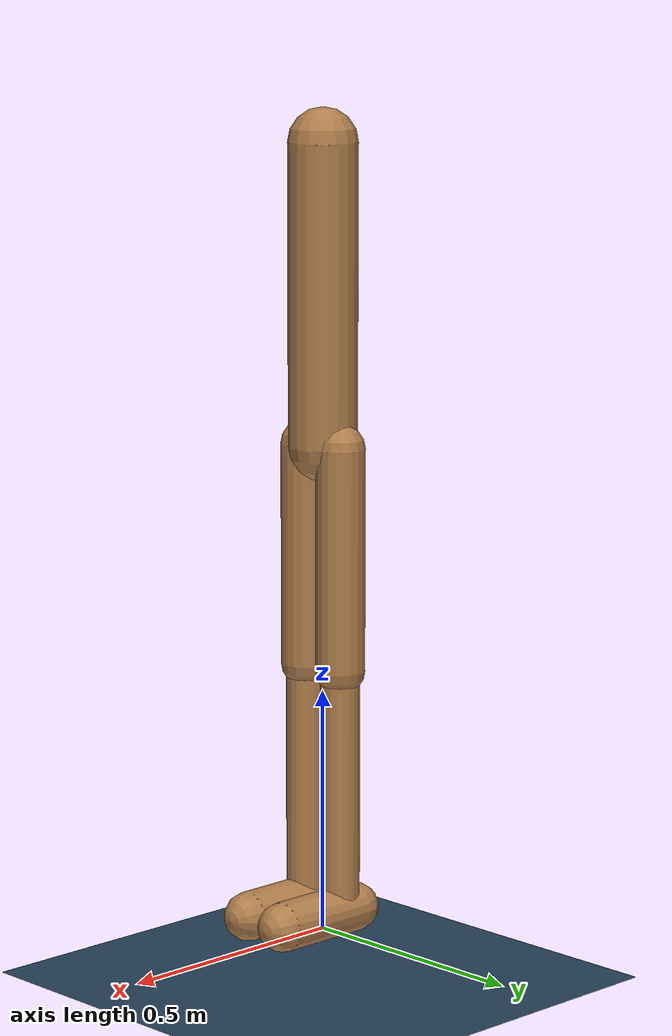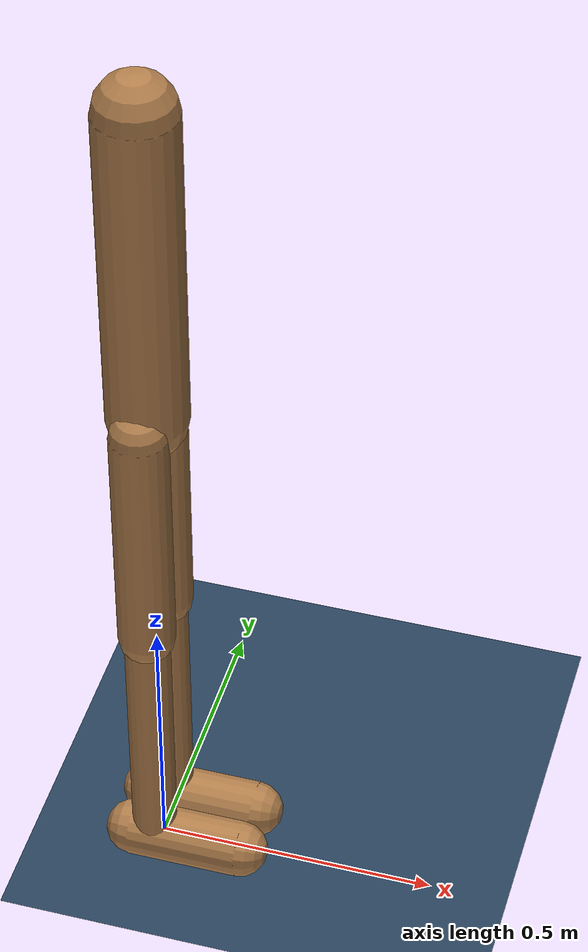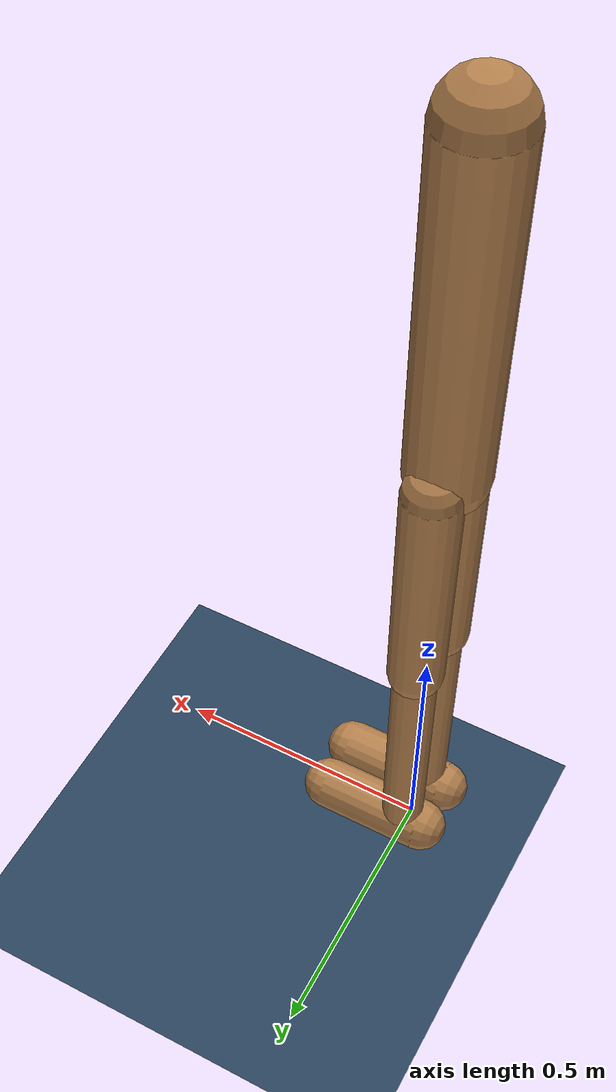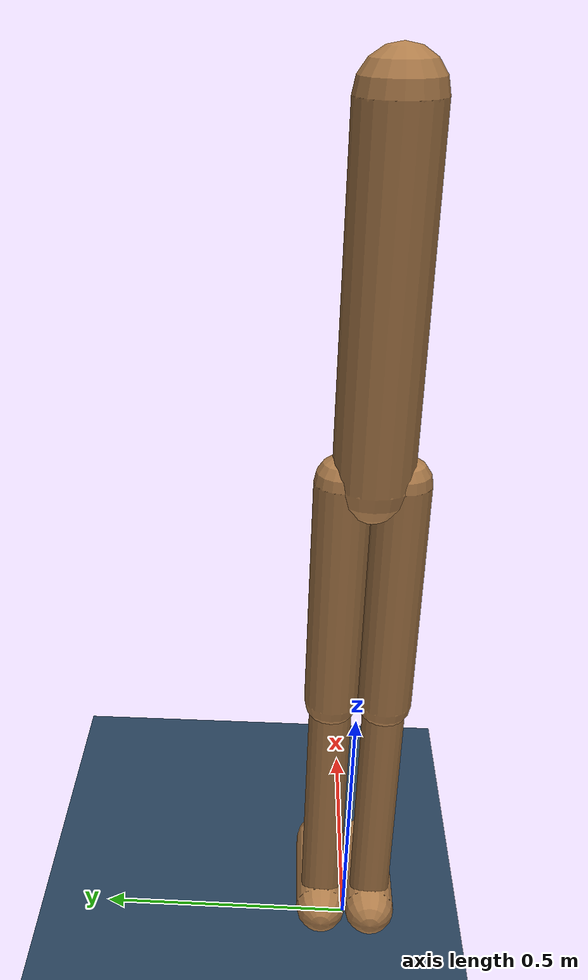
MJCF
<mujoco model="planar walker">
  <include file="./common/visual.xml"/>
  <include file="./common/skybox.xml"/>
  <include file="./common/materials.xml"/>

  <option timestep="0.0025"/>

  <statistic extent="2" center="0 0 1"/>

  <default>
    <joint damping=".1" armature="0.01" limited="true" solimplimit="0 .99 .01"/>
    <geom contype="1" conaffinity="0" friction=".7 .1 .1"/>
    <motor ctrlrange="-1 1" ctrllimited="true"/>
    <site size="0.01"/>
    <!-- HACK - We need to manually implement classes.
    So the settings below must be copied to each type -->
    <default class="walker">
      <geom material="self" type="capsule"/>
      <joint axis="0 -1 0"/>
    </default>
  </default>

  <worldbody>
    <geom name="floor" type="plane" conaffinity="1" pos="248 0 0" size="250 .8 .2" material="grid" zaxis="0 0 1"/>
    <body name="torso" pos="0 0 1.3" childclass="walker">
      <light name="light" pos="0 0 2" mode="trackcom"/>
      <camera name="side" pos="0 -2 .7" euler="60 0 0" mode="trackcom"/>
      <camera name="back" pos="-2 0 .5" xyaxes="0 -1 0 1 0 3" mode="trackcom"/>
      <joint name="rootz" axis="0 0 1" type="slide" limited="false" armature="0" damping="0"/>
      <joint name="rootx" axis="1 0 0" type="slide" limited="false" armature="0" damping="0"/>
      <joint name="rooty" axis="0 1 0" type="hinge" limited="false" armature="0" damping="0"/>
      <geom name="torso" size="0.07 0.3" material="self" type="capsule" />
      <body name="right_thigh" pos="0 -.05 -0.3">
        <joint name="right_hip" range="-20 100" axis="0 -1 0"/>
        <geom name="right_thigh" pos="0 0 -0.225" size="0.05 0.225" material="self" type="capsule"/>
        <body name="right_leg" pos="0 0 -0.7">
          <joint name="right_knee" pos="0 0 0.25" range="-150 0" axis="0 -1 0"/>
          <geom name="right_leg" size="0.04 0.25" material="self" type="capsule"/>
          <body name="right_foot" pos="0.06 0 -0.25">
            <joint name="right_ankle" pos="-0.06 0 0" range="-45 45" axis="0 -1 0"/>
            <geom name="right_foot" zaxis="1 0 0" size="0.05 0.1" material="self" type="capsule"/>
          </body>
        </body>
      </body>
      <body name="left_thigh" pos="0 .05 -0.3" >
        <joint name="left_hip" range="-20 100" axis="0 -1 0"/>
        <geom name="left_thigh" pos="0 0 -0.225" size="0.05 0.225" material="self" type="capsule"/>
        <body name="left_leg" pos="0 0 -0.7">
          <joint name="left_knee" pos="0 0 0.25" range="-150 0" axis="0 -1 0"/>
          <geom name="left_leg" size="0.04 0.25" material="self" type="capsule"/>
          <body name="left_foot" pos="0.06 0 -0.25">
            <joint name="left_ankle" pos="-0.06 0 0" range="-45 45" axis="0 -1 0"/>
            <geom name="left_foot" zaxis="1 0 0" size="0.05 0.1" material="self" type="capsule"/>
          </body>
        </body>
      </body>
    </body>
  </worldbody>

  <actuator>
    <motor name="right_hip" joint="right_hip" gear="100"/>
    <motor name="right_knee" joint="right_knee" gear="50"/>
    <motor name="right_ankle" joint="right_ankle" gear="20"/>
    <motor name="left_hip" joint="left_hip" gear="100"/>
    <motor name="left_knee" joint="left_knee" gear="50"/>
    <motor name="left_ankle" joint="left_ankle" gear="20"/>
  </actuator>
  <sensor>
    <touch name="touch_foot_left" site="left_foot"/>
    <touch name="touch_foot_right" site="right_foot"/>
  </sensor>
</mujoco>

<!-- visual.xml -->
<mujoco>
  <visual>
    <headlight ambient=".4 .4 .4" diffuse=".8 .8 .8" specular="0.1 0.1 0.1"/>
    <map znear=".01"/>
    <quality shadowsize="2048"/>
  </visual>
</mujoco>

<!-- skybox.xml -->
<mujoco>
  <asset>
      <texture name="skybox" type="skybox" builtin="gradient" rgb1=".4 .6 .8" rgb2="0 0 0"
               width="800" height="800" mark="random" markrgb="1 1 1"/>
  </asset>
</mujoco>

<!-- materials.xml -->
<!--
Common textures, colors and materials to be used throughout this suite. Some
materials such as xxx_highlight are activated on occurence of certain events,
for example receiving a positive reward.
-->
<mujoco>
  <asset>
    <texture name="grid" type="2d" builtin="checker" rgb1=".1 .2 .3" rgb2=".2 .3 .4" width="300" height="300" mark="edge" markrgb=".2 .3 .4"/>
    <material name="grid" texture="grid" texrepeat="1 1" texuniform="true" reflectance=".2"/>
    <material name="self" rgba=".7 .5 .3 1"/>
    <material name="self_default" rgba=".7 .5 .3 1"/>
    <material name="self_highlight" rgba="0 .5 .3 1"/>
    <material name="effector" rgba=".7 .4 .2 1"/>
    <material name="effector_default" rgba=".7 .4 .2 1"/>
    <material name="effector_highlight" rgba="0 .5 .3 1"/>
    <material name="decoration" rgba=".3 .5 .7 1"/>
    <material name="eye" rgba="0 .2 1 1"/>
    <material name="target" rgba=".6 .3 .3 1"/>
    <material name="target_default" rgba=".6 .3 .3 1"/>
    <material name="target_highlight" rgba=".6 .3 .3 .4"/>
  </asset>
</mujoco>
